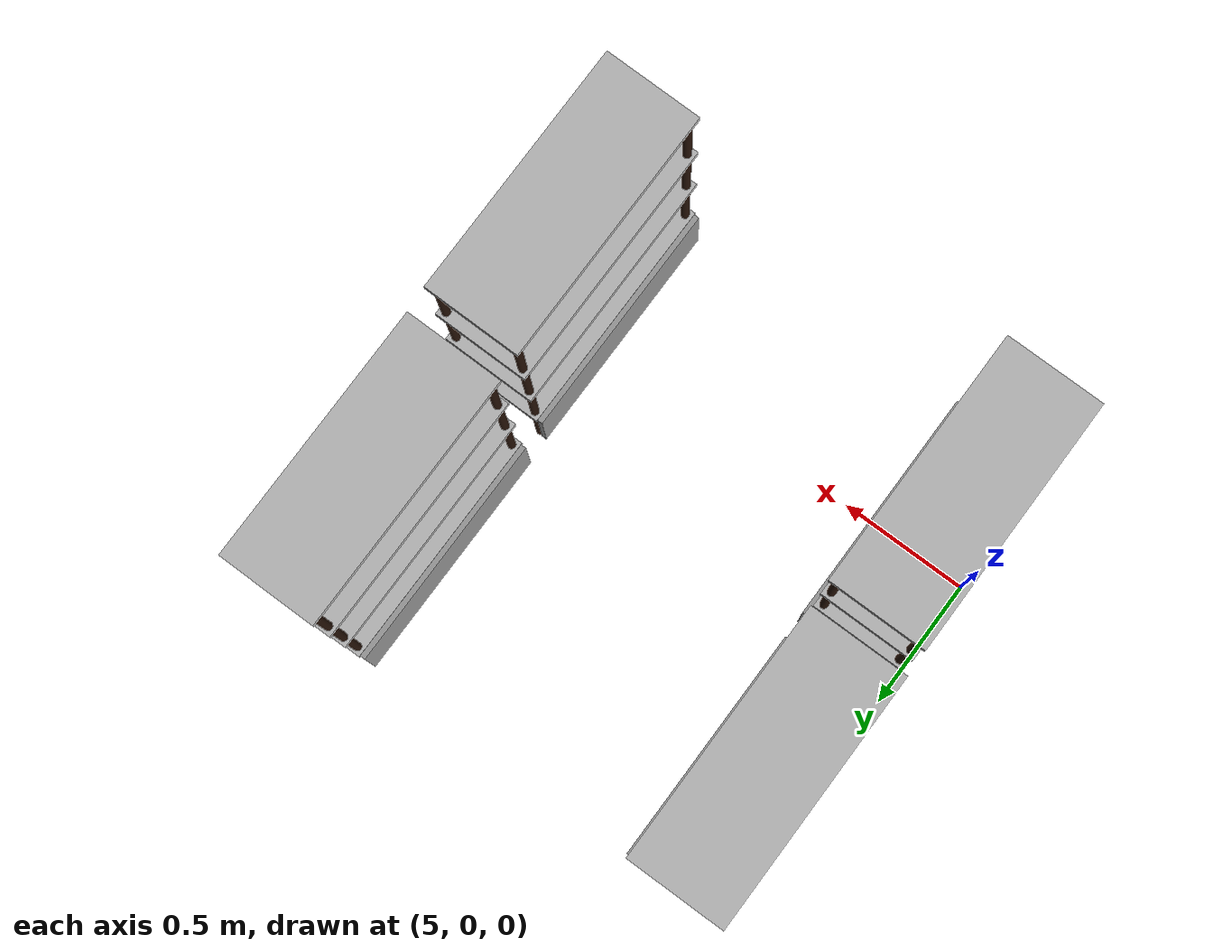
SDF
<sdf version="1.7">
 <world name="default">
  <model name="rack_1">
   <link name="link">
    <inertial>
     <mass>0.1</mass>
     <inertia><ixx>0.01857</ixx><ixy>0</ixy><ixz>0</ixz><iyy>0.015598</iyy><iyz>0</iyz><izz>0.00305</izz></inertia>
    </inertial>
    <visual name="visual1">
     <cast_shadows>0</cast_shadows>
     <geometry><mesh><uri>model://rack/meshes/rack.dae</uri></mesh></geometry>
     <material>
      <shader type="pixel"><normal_map>__default__</normal_map></shader>
      <emissive>0 0 0 1</emissive>
     </material>
    </visual>
    <visual name="visual_2">
     <cast_shadows>0</cast_shadows>
     <geometry><box><size>0.02 0.9 0.31</size></box></geometry>
     <material>
      <lighting>1</lighting>
      <script><uri>file://media/materials/scripts/gazebo.material</uri><name>Gazebo/Grey</name></script>
      <shader type="pixel"><normal_map>__default__</normal_map></shader>
      <ambient>0.3 0.3 0.3 1</ambient>
      <diffuse>0.7 0.7 0.7 1</diffuse>
      <specular>0.01 0.01 0.01 1</specular>
      <emissive>0 0 0 1</emissive>
     </material>
     <pose>-0.185 0 0.22 0 -0 0</pose>
    </visual>
    <collision name="collision_7">
     <pose>0 0 0.36 0 1.57 1.57</pose>
     <geometry><box><size>0.05 0.35 0.91</size></box></geometry>
     <surface>
      <friction>
       <ode><mu>1</mu><mu2>1</mu2><fdir1>0 0 0</fdir1><slip1>0</slip1><slip2>0</slip2></ode>
       <torsional>
        <coefficient>1</coefficient>
        <patch_radius>0</patch_radius>
        <surface_radius>0</surface_radius>
        <use_patch_radius>1</use_patch_radius>
        <ode><slip>0</slip></ode>
       </torsional>
      </friction>
      <bounce><restitution_coefficient>0</restitution_coefficient><threshold>1e+06</threshold></bounce>
      <contact>
       <collide_without_contact>0</collide_without_contact>
       <collide_without_contact_bitmask>1</collide_without_contact_bitmask>
       <collide_bitmask>1</collide_bitmask>
       <ode>
        <soft_cfm>0</soft_cfm>
        <soft_erp>0.2</soft_erp>
        <kp>1e+15</kp>
        <kd>1e+13</kd>
        <max_vel>0.01</max_vel>
        <min_depth>0</min_depth>
       </ode>
       <bullet>
        <split_impulse>1</split_impulse>
        <split_impulse_penetration_threshold>-0.01</split_impulse_penetration_threshold>
        <soft_cfm>0</soft_cfm>
        <soft_erp>0.2</soft_erp>
        <kp>1e+13</kp>
        <kd>1</kd>
       </bullet>
      </contact>
     </surface>
    </collision>
    <collision name="collision_6">
     <pose>0 0 0.725 0 1.57 1.57</pose>
     <geometry><box><size>0.05 0.35 0.91</size></box></geometry>
     <surface>
      <friction>
       <ode><mu>1</mu><mu2>1</mu2><fdir1>0 0 0</fdir1><slip1>0</slip1><slip2>0</slip2></ode>
       <torsional>
        <coefficient>1</coefficient>
        <patch_radius>0</patch_radius>
        <surface_radius>0</surface_radius>
        <use_patch_radius>1</use_patch_radius>
        <ode><slip>0</slip></ode>
       </torsional>
      </friction>
      <bounce><restitution_coefficient>0</restitution_coefficient><threshold>1e+06</threshold></bounce>
      <contact>
       <collide_without_contact>0</collide_without_contact>
       <collide_without_contact_bitmask>1</collide_without_contact_bitmask>
       <collide_bitmask>1</collide_bitmask>
       <ode>
        <soft_cfm>0</soft_cfm>
        <soft_erp>0.2</soft_erp>
        <kp>1e+15</kp>
        <kd>1e+13</kd>
        <max_vel>0.01</max_vel>
        <min_depth>0</min_depth>
       </ode>
       <bullet>
        <split_impulse>1</split_impulse>
        <split_impulse_penetration_threshold>-0.01</split_impulse_penetration_threshold>
        <soft_cfm>0</soft_cfm>
        <soft_erp>0.2</soft_erp>
        <kp>1e+13</kp>
        <kd>1</kd>
       </bullet>
      </contact>
     </surface>
    </collision>
    <collision name="collision_5">
     <pose>0 0 1.09 0 1.57 1.57</pose>
     <geometry><box><size>0.05 0.35 0.91</size></box></geometry>
     <surface>
      <friction>
       <ode><mu>1</mu><mu2>1</mu2><fdir1>0 0 0</fdir1><slip1>0</slip1><slip2>0</slip2></ode>
       <torsional>
        <coefficient>1</coefficient>
        <patch_radius>0</patch_radius>
        <surface_radius>0</surface_radius>
        <use_patch_radius>1</use_patch_radius>
        <ode><slip>0</slip></ode>
       </torsional>
      </friction>
      <bounce><restitution_coefficient>0</restitution_coefficient><threshold>1e+06</threshold></bounce>
      <contact>
       <collide_without_contact>0</collide_without_contact>
       <collide_without_contact_bitmask>1</collide_without_contact_bitmask>
       <collide_bitmask>1</collide_bitmask>
       <ode>
        <soft_cfm>0</soft_cfm>
        <soft_erp>0.2</soft_erp>
        <kp>1e+15</kp>
        <kd>1e+13</kd>
        <max_vel>0.01</max_vel>
        <min_depth>0</min_depth>
       </ode>
       <bullet>
        <split_impulse>1</split_impulse>
        <split_impulse_penetration_threshold>-0.01</split_impulse_penetration_threshold>
        <soft_cfm>0</soft_cfm>
        <soft_erp>0.2</soft_erp>
        <kp>1e+13</kp>
        <kd>1</kd>
       </bullet>
      </contact>
     </surface>
    </collision>
    <collision name="collision_3">
     <pose>0 0 1.455 0 1.57 1.57</pose>
     <geometry><box><size>0.05 0.35 0.91</size></box></geometry>
     <surface>
      <friction>
       <ode><mu>1</mu><mu2>1</mu2><fdir1>0 0 0</fdir1><slip1>0</slip1><slip2>0</slip2></ode>
       <torsional>
        <coefficient>1</coefficient>
        <patch_radius>0</patch_radius>
        <surface_radius>0</surface_radius>
        <use_patch_radius>1</use_patch_radius>
        <ode><slip>0</slip></ode>
       </torsional>
      </friction>
      <bounce><restitution_coefficient>0</restitution_coefficient><threshold>1e+06</threshold></bounce>
      <contact>
       <collide_without_contact>0</collide_without_contact>
       <collide_without_contact_bitmask>1</collide_without_contact_bitmask>
       <collide_bitmask>1</collide_bitmask>
       <ode>
        <soft_cfm>0</soft_cfm>
        <soft_erp>0.2</soft_erp>
        <kp>1e+15</kp>
        <kd>1e+13</kd>
        <max_vel>0.01</max_vel>
        <min_depth>0</min_depth>
       </ode>
       <bullet>
        <split_impulse>1</split_impulse>
        <split_impulse_penetration_threshold>-0.01</split_impulse_penetration_threshold>
        <soft_cfm>0</soft_cfm>
        <soft_erp>0.2</soft_erp>
        <kp>1e+13</kp>
        <kd>1</kd>
       </bullet>
      </contact>
     </surface>
    </collision>
    <collision name="collision_1">
     <pose>0 0.43 0.73 0 -0 1.57</pose>
     <geometry><box><size>0.05 0.36 1.46</size></box></geometry>
     <surface>
      <friction>
       <ode><mu>1</mu><mu2>1</mu2><fdir1>0 0 0</fdir1><slip1>0</slip1><slip2>0</slip2></ode>
       <torsional>
        <coefficient>1</coefficient>
        <patch_radius>0</patch_radius>
        <surface_radius>0</surface_radius>
        <use_patch_radius>1</use_patch_radius>
        <ode><slip>0</slip></ode>
       </torsional>
      </friction>
      <bounce><restitution_coefficient>0</restitution_coefficient><threshold>1e+06</threshold></bounce>
      <contact>
       <collide_without_contact>0</collide_without_contact>
       <collide_without_contact_bitmask>1</collide_without_contact_bitmask>
       <collide_bitmask>1</collide_bitmask>
       <ode>
        <soft_cfm>0</soft_cfm>
        <soft_erp>0.2</soft_erp>
        <kp>1e+15</kp>
        <kd>1e+13</kd>
        <max_vel>0.01</max_vel>
        <min_depth>0</min_depth>
       </ode>
       <bullet>
        <split_impulse>1</split_impulse>
        <split_impulse_penetration_threshold>-0.01</split_impulse_penetration_threshold>
        <soft_cfm>0</soft_cfm>
        <soft_erp>0.2</soft_erp>
        <kp>1e+13</kp>
        <kd>1</kd>
       </bullet>
      </contact>
     </surface>
    </collision>
    <collision name="collision_2">
     <pose>0 -0.43 0.73 0 -0 1.57</pose>
     <geometry><box><size>0.05 0.36 1.46</size></box></geometry>
     <surface>
      <friction>
       <ode><mu>1</mu><mu2>1</mu2><fdir1>0 0 0</fdir1><slip1>0</slip1><slip2>0</slip2></ode>
       <torsional>
        <coefficient>1</coefficient>
        <patch_radius>0</patch_radius>
        <surface_radius>0</surface_radius>
        <use_patch_radius>1</use_patch_radius>
        <ode><slip>0</slip></ode>
       </torsional>
      </friction>
      <bounce><restitution_coefficient>0</restitution_coefficient><threshold>1e+06</threshold></bounce>
      <contact>
       <collide_without_contact>0</collide_without_contact>
       <collide_without_contact_bitmask>1</collide_without_contact_bitmask>
       <collide_bitmask>1</collide_bitmask>
       <ode>
        <soft_cfm>0</soft_cfm>
        <soft_erp>0.2</soft_erp>
        <kp>1e+15</kp>
        <kd>1e+13</kd>
        <max_vel>0.01</max_vel>
        <min_depth>0</min_depth>
       </ode>
       <bullet>
        <split_impulse>1</split_impulse>
        <split_impulse_penetration_threshold>-0.01</split_impulse_penetration_threshold>
        <soft_cfm>0</soft_cfm>
        <soft_erp>0.2</soft_erp>
        <kp>1e+13</kp>
        <kd>1</kd>
       </bullet>
      </contact>
     </surface>
    </collision>
    <collision name="collision">
     <pose>-0.185 0 0.22 0 -0 0</pose>
     <geometry><box><size>0.02 0.9 0.31</size></box></geometry>
     <surface>
      <friction>
       <ode><mu>1</mu><mu2>1</mu2><fdir1>0 0 0</fdir1><slip1>0</slip1><slip2>0</slip2></ode>
       <torsional>
        <coefficient>1</coefficient>
        <patch_radius>0</patch_radius>
        <surface_radius>0</surface_radius>
        <use_patch_radius>1</use_patch_radius>
        <ode><slip>0</slip></ode>
       </torsional>
      </friction>
      <bounce><restitution_coefficient>0</restitution_coefficient><threshold>1e+06</threshold></bounce>
      <contact>
       <collide_without_contact>0</collide_without_contact>
       <collide_without_contact_bitmask>1</collide_without_contact_bitmask>
       <collide_bitmask>1</collide_bitmask>
       <ode>
        <soft_cfm>0</soft_cfm>
        <soft_erp>0.2</soft_erp>
        <kp>1e+15</kp>
        <kd>1e+13</kd>
        <max_vel>0.01</max_vel>
        <min_depth>0</min_depth>
       </ode>
       <bullet>
        <split_impulse>1</split_impulse>
        <split_impulse_penetration_threshold>-0.01</split_impulse_penetration_threshold>
        <soft_cfm>0</soft_cfm>
        <soft_erp>0.2</soft_erp>
        <kp>1e+13</kp>
        <kd>1</kd>
       </bullet>
      </contact>
     </surface>
    </collision>
   </link>
   <static>0</static>
   <pose>6.68339 0.000257 0.032197 -4.9e-05 0.000366 -0.006943</pose>
  </model>
  <model name="rack_2">
   <link name="link">
    <inertial>
     <mass>0.1</mass>
     <inertia><ixx>0.01857</ixx><ixy>0</ixy><ixz>0</ixz><iyy>0.015598</iyy><iyz>0</iyz><izz>0.00305</izz></inertia>
    </inertial>
    <visual name="visual1">
     <cast_shadows>0</cast_shadows>
     <geometry><mesh><uri>model://rack/meshes/rack.dae</uri></mesh></geometry>
     <material>
      <shader type="pixel"><normal_map>__default__</normal_map></shader>
      <emissive>0 0 0 1</emissive>
     </material>
    </visual>
    <visual name="visual_2">
     <cast_shadows>0</cast_shadows>
     <geometry><box><size>0.02 0.9 0.31</size></box></geometry>
     <material>
      <lighting>1</lighting>
      <script><uri>file://media/materials/scripts/gazebo.material</uri><name>Gazebo/Grey</name></script>
      <shader type="pixel"><normal_map>__default__</normal_map></shader>
      <ambient>0.3 0.3 0.3 1</ambient>
      <diffuse>0.7 0.7 0.7 1</diffuse>
      <specular>0.01 0.01 0.01 1</specular>
      <emissive>0 0 0 1</emissive>
     </material>
     <pose>-0.185 0 0.22 0 -0 0</pose>
    </visual>
    <collision name="collision_7">
     <pose>0 0 0.36 0 1.57 1.57</pose>
     <geometry><box><size>0.05 0.35 0.91</size></box></geometry>
     <surface>
      <friction>
       <ode><mu>1</mu><mu2>1</mu2><fdir1>0 0 0</fdir1><slip1>0</slip1><slip2>0</slip2></ode>
       <torsional>
        <coefficient>1</coefficient>
        <patch_radius>0</patch_radius>
        <surface_radius>0</surface_radius>
        <use_patch_radius>1</use_patch_radius>
        <ode><slip>0</slip></ode>
       </torsional>
      </friction>
      <bounce><restitution_coefficient>0</restitution_coefficient><threshold>1e+06</threshold></bounce>
      <contact>
       <collide_without_contact>0</collide_without_contact>
       <collide_without_contact_bitmask>1</collide_without_contact_bitmask>
       <collide_bitmask>1</collide_bitmask>
       <ode>
        <soft_cfm>0</soft_cfm>
        <soft_erp>0.2</soft_erp>
        <kp>1e+15</kp>
        <kd>1e+13</kd>
        <max_vel>0.01</max_vel>
        <min_depth>0</min_depth>
       </ode>
       <bullet>
        <split_impulse>1</split_impulse>
        <split_impulse_penetration_threshold>-0.01</split_impulse_penetration_threshold>
        <soft_cfm>0</soft_cfm>
        <soft_erp>0.2</soft_erp>
        <kp>1e+13</kp>
        <kd>1</kd>
       </bullet>
      </contact>
     </surface>
    </collision>
    <collision name="collision_6">
     <pose>0 0 0.725 0 1.57 1.57</pose>
     <geometry><box><size>0.05 0.35 0.91</size></box></geometry>
     <surface>
      <friction>
       <ode><mu>1</mu><mu2>1</mu2><fdir1>0 0 0</fdir1><slip1>0</slip1><slip2>0</slip2></ode>
       <torsional>
        <coefficient>1</coefficient>
        <patch_radius>0</patch_radius>
        <surface_radius>0</surface_radius>
        <use_patch_radius>1</use_patch_radius>
        <ode><slip>0</slip></ode>
       </torsional>
      </friction>
      <bounce><restitution_coefficient>0</restitution_coefficient><threshold>1e+06</threshold></bounce>
      <contact>
       <collide_without_contact>0</collide_without_contact>
       <collide_without_contact_bitmask>1</collide_without_contact_bitmask>
       <collide_bitmask>1</collide_bitmask>
       <ode>
        <soft_cfm>0</soft_cfm>
        <soft_erp>0.2</soft_erp>
        <kp>1e+15</kp>
        <kd>1e+13</kd>
        <max_vel>0.01</max_vel>
        <min_depth>0</min_depth>
       </ode>
       <bullet>
        <split_impulse>1</split_impulse>
        <split_impulse_penetration_threshold>-0.01</split_impulse_penetration_threshold>
        <soft_cfm>0</soft_cfm>
        <soft_erp>0.2</soft_erp>
        <kp>1e+13</kp>
        <kd>1</kd>
       </bullet>
      </contact>
     </surface>
    </collision>
    <collision name="collision_5">
     <pose>0 0 1.09 0 1.57 1.57</pose>
     <geometry><box><size>0.05 0.35 0.91</size></box></geometry>
     <surface>
      <friction>
       <ode><mu>1</mu><mu2>1</mu2><fdir1>0 0 0</fdir1><slip1>0</slip1><slip2>0</slip2></ode>
       <torsional>
        <coefficient>1</coefficient>
        <patch_radius>0</patch_radius>
        <surface_radius>0</surface_radius>
        <use_patch_radius>1</use_patch_radius>
        <ode><slip>0</slip></ode>
       </torsional>
      </friction>
      <bounce><restitution_coefficient>0</restitution_coefficient><threshold>1e+06</threshold></bounce>
      <contact>
       <collide_without_contact>0</collide_without_contact>
       <collide_without_contact_bitmask>1</collide_without_contact_bitmask>
       <collide_bitmask>1</collide_bitmask>
       <ode>
        <soft_cfm>0</soft_cfm>
        <soft_erp>0.2</soft_erp>
        <kp>1e+15</kp>
        <kd>1e+13</kd>
        <max_vel>0.01</max_vel>
        <min_depth>0</min_depth>
       </ode>
       <bullet>
        <split_impulse>1</split_impulse>
        <split_impulse_penetration_threshold>-0.01</split_impulse_penetration_threshold>
        <soft_cfm>0</soft_cfm>
        <soft_erp>0.2</soft_erp>
        <kp>1e+13</kp>
        <kd>1</kd>
       </bullet>
      </contact>
     </surface>
    </collision>
    <collision name="collision_3">
     <pose>0 0 1.455 0 1.57 1.57</pose>
     <geometry><box><size>0.05 0.35 0.91</size></box></geometry>
     <surface>
      <friction>
       <ode><mu>1</mu><mu2>1</mu2><fdir1>0 0 0</fdir1><slip1>0</slip1><slip2>0</slip2></ode>
       <torsional>
        <coefficient>1</coefficient>
        <patch_radius>0</patch_radius>
        <surface_radius>0</surface_radius>
        <use_patch_radius>1</use_patch_radius>
        <ode><slip>0</slip></ode>
       </torsional>
      </friction>
      <bounce><restitution_coefficient>0</restitution_coefficient><threshold>1e+06</threshold></bounce>
      <contact>
       <collide_without_contact>0</collide_without_contact>
       <collide_without_contact_bitmask>1</collide_without_contact_bitmask>
       <collide_bitmask>1</collide_bitmask>
       <ode>
        <soft_cfm>0</soft_cfm>
        <soft_erp>0.2</soft_erp>
        <kp>1e+15</kp>
        <kd>1e+13</kd>
        <max_vel>0.01</max_vel>
        <min_depth>0</min_depth>
       </ode>
       <bullet>
        <split_impulse>1</split_impulse>
        <split_impulse_penetration_threshold>-0.01</split_impulse_penetration_threshold>
        <soft_cfm>0</soft_cfm>
        <soft_erp>0.2</soft_erp>
        <kp>1e+13</kp>
        <kd>1</kd>
       </bullet>
      </contact>
     </surface>
    </collision>
    <collision name="collision_1">
     <pose>0 0.43 0.73 0 -0 1.57</pose>
     <geometry><box><size>0.05 0.36 1.46</size></box></geometry>
     <surface>
      <friction>
       <ode><mu>1</mu><mu2>1</mu2><fdir1>0 0 0</fdir1><slip1>0</slip1><slip2>0</slip2></ode>
       <torsional>
        <coefficient>1</coefficient>
        <patch_radius>0</patch_radius>
        <surface_radius>0</surface_radius>
        <use_patch_radius>1</use_patch_radius>
        <ode><slip>0</slip></ode>
       </torsional>
      </friction>
      <bounce><restitution_coefficient>0</restitution_coefficient><threshold>1e+06</threshold></bounce>
      <contact>
       <collide_without_contact>0</collide_without_contact>
       <collide_without_contact_bitmask>1</collide_without_contact_bitmask>
       <collide_bitmask>1</collide_bitmask>
       <ode>
        <soft_cfm>0</soft_cfm>
        <soft_erp>0.2</soft_erp>
        <kp>1e+15</kp>
        <kd>1e+13</kd>
        <max_vel>0.01</max_vel>
        <min_depth>0</min_depth>
       </ode>
       <bullet>
        <split_impulse>1</split_impulse>
        <split_impulse_penetration_threshold>-0.01</split_impulse_penetration_threshold>
        <soft_cfm>0</soft_cfm>
        <soft_erp>0.2</soft_erp>
        <kp>1e+13</kp>
        <kd>1</kd>
       </bullet>
      </contact>
     </surface>
    </collision>
    <collision name="collision_2">
     <pose>0 -0.43 0.73 0 -0 1.57</pose>
     <geometry><box><size>0.05 0.36 1.46</size></box></geometry>
     <surface>
      <friction>
       <ode><mu>1</mu><mu2>1</mu2><fdir1>0 0 0</fdir1><slip1>0</slip1><slip2>0</slip2></ode>
       <torsional>
        <coefficient>1</coefficient>
        <patch_radius>0</patch_radius>
        <surface_radius>0</surface_radius>
        <use_patch_radius>1</use_patch_radius>
        <ode><slip>0</slip></ode>
       </torsional>
      </friction>
      <bounce><restitution_coefficient>0</restitution_coefficient><threshold>1e+06</threshold></bounce>
      <contact>
       <collide_without_contact>0</collide_without_contact>
       <collide_without_contact_bitmask>1</collide_without_contact_bitmask>
       <collide_bitmask>1</collide_bitmask>
       <ode>
        <soft_cfm>0</soft_cfm>
        <soft_erp>0.2</soft_erp>
        <kp>1e+15</kp>
        <kd>1e+13</kd>
        <max_vel>0.01</max_vel>
        <min_depth>0</min_depth>
       </ode>
       <bullet>
        <split_impulse>1</split_impulse>
        <split_impulse_penetration_threshold>-0.01</split_impulse_penetration_threshold>
        <soft_cfm>0</soft_cfm>
        <soft_erp>0.2</soft_erp>
        <kp>1e+13</kp>
        <kd>1</kd>
       </bullet>
      </contact>
     </surface>
    </collision>
    <collision name="collision">
     <pose>-0.185 0 0.22 0 -0 0</pose>
     <geometry><box><size>0.02 0.9 0.31</size></box></geometry>
     <surface>
      <friction>
       <ode><mu>1</mu><mu2>1</mu2><fdir1>0 0 0</fdir1><slip1>0</slip1><slip2>0</slip2></ode>
       <torsional>
        <coefficient>1</coefficient>
        <patch_radius>0</patch_radius>
        <surface_radius>0</surface_radius>
        <use_patch_radius>1</use_patch_radius>
        <ode><slip>0</slip></ode>
       </torsional>
      </friction>
      <bounce><restitution_coefficient>0</restitution_coefficient><threshold>1e+06</threshold></bounce>
      <contact>
       <collide_without_contact>0</collide_without_contact>
       <collide_without_contact_bitmask>1</collide_without_contact_bitmask>
       <collide_bitmask>1</collide_bitmask>
       <ode>
        <soft_cfm>0</soft_cfm>
        <soft_erp>0.2</soft_erp>
        <kp>1e+15</kp>
        <kd>1e+13</kd>
        <max_vel>0.01</max_vel>
        <min_depth>0</min_depth>
       </ode>
       <bullet>
        <split_impulse>1</split_impulse>
        <split_impulse_penetration_threshold>-0.01</split_impulse_penetration_threshold>
        <soft_cfm>0</soft_cfm>
        <soft_erp>0.2</soft_erp>
        <kp>1e+13</kp>
        <kd>1</kd>
       </bullet>
      </contact>
     </surface>
    </collision>
   </link>
   <static>0</static>
   <pose>6.68376 1.00024 0.032113 4.6e-05 0.000309 -0.006653</pose>
  </model>
  <model name="rack_3">
   <link name="link">
    <inertial>
     <mass>0.1</mass>
     <inertia><ixx>0.01857</ixx><ixy>0</ixy><ixz>0</ixz><iyy>0.015598</iyy><iyz>0</iyz><izz>0.00305</izz></inertia>
    </inertial>
    <visual name="visual1">
     <cast_shadows>0</cast_shadows>
     <geometry><mesh><uri>model://rack/meshes/rack.dae</uri></mesh></geometry>
     <material>
      <shader type="pixel"><normal_map>__default__</normal_map></shader>
      <emissive>0 0 0 1</emissive>
     </material>
    </visual>
    <visual name="visual_2">
     <cast_shadows>0</cast_shadows>
     <geometry><box><size>0.02 0.9 0.31</size></box></geometry>
     <material>
      <lighting>1</lighting>
      <script><uri>file://media/materials/scripts/gazebo.material</uri><name>Gazebo/Grey</name></script>
      <shader type="pixel"><normal_map>__default__</normal_map></shader>
      <ambient>0.3 0.3 0.3 1</ambient>
      <diffuse>0.7 0.7 0.7 1</diffuse>
      <specular>0.01 0.01 0.01 1</specular>
      <emissive>0 0 0 1</emissive>
     </material>
     <pose>-0.185 0 0.22 0 -0 0</pose>
    </visual>
    <collision name="collision_7">
     <pose>0 0 0.36 0 1.57 1.57</pose>
     <geometry><box><size>0.05 0.35 0.91</size></box></geometry>
     <surface>
      <friction>
       <ode><mu>1</mu><mu2>1</mu2><fdir1>0 0 0</fdir1><slip1>0</slip1><slip2>0</slip2></ode>
       <torsional>
        <coefficient>1</coefficient>
        <patch_radius>0</patch_radius>
        <surface_radius>0</surface_radius>
        <use_patch_radius>1</use_patch_radius>
        <ode><slip>0</slip></ode>
       </torsional>
      </friction>
      <bounce><restitution_coefficient>0</restitution_coefficient><threshold>1e+06</threshold></bounce>
      <contact>
       <collide_without_contact>0</collide_without_contact>
       <collide_without_contact_bitmask>1</collide_without_contact_bitmask>
       <collide_bitmask>1</collide_bitmask>
       <ode>
        <soft_cfm>0</soft_cfm>
        <soft_erp>0.2</soft_erp>
        <kp>1e+15</kp>
        <kd>1e+13</kd>
        <max_vel>0.01</max_vel>
        <min_depth>0</min_depth>
       </ode>
       <bullet>
        <split_impulse>1</split_impulse>
        <split_impulse_penetration_threshold>-0.01</split_impulse_penetration_threshold>
        <soft_cfm>0</soft_cfm>
        <soft_erp>0.2</soft_erp>
        <kp>1e+13</kp>
        <kd>1</kd>
       </bullet>
      </contact>
     </surface>
    </collision>
    <collision name="collision_6">
     <pose>0 0 0.725 0 1.57 1.57</pose>
     <geometry><box><size>0.05 0.35 0.91</size></box></geometry>
     <surface>
      <friction>
       <ode><mu>1</mu><mu2>1</mu2><fdir1>0 0 0</fdir1><slip1>0</slip1><slip2>0</slip2></ode>
       <torsional>
        <coefficient>1</coefficient>
        <patch_radius>0</patch_radius>
        <surface_radius>0</surface_radius>
        <use_patch_radius>1</use_patch_radius>
        <ode><slip>0</slip></ode>
       </torsional>
      </friction>
      <bounce><restitution_coefficient>0</restitution_coefficient><threshold>1e+06</threshold></bounce>
      <contact>
       <collide_without_contact>0</collide_without_contact>
       <collide_without_contact_bitmask>1</collide_without_contact_bitmask>
       <collide_bitmask>1</collide_bitmask>
       <ode>
        <soft_cfm>0</soft_cfm>
        <soft_erp>0.2</soft_erp>
        <kp>1e+15</kp>
        <kd>1e+13</kd>
        <max_vel>0.01</max_vel>
        <min_depth>0</min_depth>
       </ode>
       <bullet>
        <split_impulse>1</split_impulse>
        <split_impulse_penetration_threshold>-0.01</split_impulse_penetration_threshold>
        <soft_cfm>0</soft_cfm>
        <soft_erp>0.2</soft_erp>
        <kp>1e+13</kp>
        <kd>1</kd>
       </bullet>
      </contact>
     </surface>
    </collision>
    <collision name="collision_5">
     <pose>0 0 1.09 0 1.57 1.57</pose>
     <geometry><box><size>0.05 0.35 0.91</size></box></geometry>
     <surface>
      <friction>
       <ode><mu>1</mu><mu2>1</mu2><fdir1>0 0 0</fdir1><slip1>0</slip1><slip2>0</slip2></ode>
       <torsional>
        <coefficient>1</coefficient>
        <patch_radius>0</patch_radius>
        <surface_radius>0</surface_radius>
        <use_patch_radius>1</use_patch_radius>
        <ode><slip>0</slip></ode>
       </torsional>
      </friction>
      <bounce><restitution_coefficient>0</restitution_coefficient><threshold>1e+06</threshold></bounce>
      <contact>
       <collide_without_contact>0</collide_without_contact>
       <collide_without_contact_bitmask>1</collide_without_contact_bitmask>
       <collide_bitmask>1</collide_bitmask>
       <ode>
        <soft_cfm>0</soft_cfm>
        <soft_erp>0.2</soft_erp>
        <kp>1e+15</kp>
        <kd>1e+13</kd>
        <max_vel>0.01</max_vel>
        <min_depth>0</min_depth>
       </ode>
       <bullet>
        <split_impulse>1</split_impulse>
        <split_impulse_penetration_threshold>-0.01</split_impulse_penetration_threshold>
        <soft_cfm>0</soft_cfm>
        <soft_erp>0.2</soft_erp>
        <kp>1e+13</kp>
        <kd>1</kd>
       </bullet>
      </contact>
     </surface>
    </collision>
    <collision name="collision_3">
     <pose>0 0 1.455 0 1.57 1.57</pose>
     <geometry><box><size>0.05 0.35 0.91</size></box></geometry>
     <surface>
      <friction>
       <ode><mu>1</mu><mu2>1</mu2><fdir1>0 0 0</fdir1><slip1>0</slip1><slip2>0</slip2></ode>
       <torsional>
        <coefficient>1</coefficient>
        <patch_radius>0</patch_radius>
        <surface_radius>0</surface_radius>
        <use_patch_radius>1</use_patch_radius>
        <ode><slip>0</slip></ode>
       </torsional>
      </friction>
      <bounce><restitution_coefficient>0</restitution_coefficient><threshold>1e+06</threshold></bounce>
      <contact>
       <collide_without_contact>0</collide_without_contact>
       <collide_without_contact_bitmask>1</collide_without_contact_bitmask>
       <collide_bitmask>1</collide_bitmask>
       <ode>
        <soft_cfm>0</soft_cfm>
        <soft_erp>0.2</soft_erp>
        <kp>1e+15</kp>
        <kd>1e+13</kd>
        <max_vel>0.01</max_vel>
        <min_depth>0</min_depth>
       </ode>
       <bullet>
        <split_impulse>1</split_impulse>
        <split_impulse_penetration_threshold>-0.01</split_impulse_penetration_threshold>
        <soft_cfm>0</soft_cfm>
        <soft_erp>0.2</soft_erp>
        <kp>1e+13</kp>
        <kd>1</kd>
       </bullet>
      </contact>
     </surface>
    </collision>
    <collision name="collision_1">
     <pose>0 0.43 0.73 0 -0 1.57</pose>
     <geometry><box><size>0.05 0.36 1.46</size></box></geometry>
     <surface>
      <friction>
       <ode><mu>1</mu><mu2>1</mu2><fdir1>0 0 0</fdir1><slip1>0</slip1><slip2>0</slip2></ode>
       <torsional>
        <coefficient>1</coefficient>
        <patch_radius>0</patch_radius>
        <surface_radius>0</surface_radius>
        <use_patch_radius>1</use_patch_radius>
        <ode><slip>0</slip></ode>
       </torsional>
      </friction>
      <bounce><restitution_coefficient>0</restitution_coefficient><threshold>1e+06</threshold></bounce>
      <contact>
       <collide_without_contact>0</collide_without_contact>
       <collide_without_contact_bitmask>1</collide_without_contact_bitmask>
       <collide_bitmask>1</collide_bitmask>
       <ode>
        <soft_cfm>0</soft_cfm>
        <soft_erp>0.2</soft_erp>
        <kp>1e+15</kp>
        <kd>1e+13</kd>
        <max_vel>0.01</max_vel>
        <min_depth>0</min_depth>
       </ode>
       <bullet>
        <split_impulse>1</split_impulse>
        <split_impulse_penetration_threshold>-0.01</split_impulse_penetration_threshold>
        <soft_cfm>0</soft_cfm>
        <soft_erp>0.2</soft_erp>
        <kp>1e+13</kp>
        <kd>1</kd>
       </bullet>
      </contact>
     </surface>
    </collision>
    <collision name="collision_2">
     <pose>0 -0.43 0.73 0 -0 1.57</pose>
     <geometry><box><size>0.05 0.36 1.46</size></box></geometry>
     <surface>
      <friction>
       <ode><mu>1</mu><mu2>1</mu2><fdir1>0 0 0</fdir1><slip1>0</slip1><slip2>0</slip2></ode>
       <torsional>
        <coefficient>1</coefficient>
        <patch_radius>0</patch_radius>
        <surface_radius>0</surface_radius>
        <use_patch_radius>1</use_patch_radius>
        <ode><slip>0</slip></ode>
       </torsional>
      </friction>
      <bounce><restitution_coefficient>0</restitution_coefficient><threshold>1e+06</threshold></bounce>
      <contact>
       <collide_without_contact>0</collide_without_contact>
       <collide_without_contact_bitmask>1</collide_without_contact_bitmask>
       <collide_bitmask>1</collide_bitmask>
       <ode>
        <soft_cfm>0</soft_cfm>
        <soft_erp>0.2</soft_erp>
        <kp>1e+15</kp>
        <kd>1e+13</kd>
        <max_vel>0.01</max_vel>
        <min_depth>0</min_depth>
       </ode>
       <bullet>
        <split_impulse>1</split_impulse>
        <split_impulse_penetration_threshold>-0.01</split_impulse_penetration_threshold>
        <soft_cfm>0</soft_cfm>
        <soft_erp>0.2</soft_erp>
        <kp>1e+13</kp>
        <kd>1</kd>
       </bullet>
      </contact>
     </surface>
    </collision>
    <collision name="collision">
     <pose>-0.185 0 0.22 0 -0 0</pose>
     <geometry><box><size>0.02 0.9 0.31</size></box></geometry>
     <surface>
      <friction>
       <ode><mu>1</mu><mu2>1</mu2><fdir1>0 0 0</fdir1><slip1>0</slip1><slip2>0</slip2></ode>
       <torsional>
        <coefficient>1</coefficient>
        <patch_radius>0</patch_radius>
        <surface_radius>0</surface_radius>
        <use_patch_radius>1</use_patch_radius>
        <ode><slip>0</slip></ode>
       </torsional>
      </friction>
      <bounce><restitution_coefficient>0</restitution_coefficient><threshold>1e+06</threshold></bounce>
      <contact>
       <collide_without_contact>0</collide_without_contact>
       <collide_without_contact_bitmask>1</collide_without_contact_bitmask>
       <collide_bitmask>1</collide_bitmask>
       <ode>
        <soft_cfm>0</soft_cfm>
        <soft_erp>0.2</soft_erp>
        <kp>1e+15</kp>
        <kd>1e+13</kd>
        <max_vel>0.01</max_vel>
        <min_depth>0</min_depth>
       </ode>
       <bullet>
        <split_impulse>1</split_impulse>
        <split_impulse_penetration_threshold>-0.01</split_impulse_penetration_threshold>
        <soft_cfm>0</soft_cfm>
        <soft_erp>0.2</soft_erp>
        <kp>1e+13</kp>
        <kd>1</kd>
       </bullet>
      </contact>
     </surface>
    </collision>
   </link>
   <static>0</static>
   <pose>5.2 1 0.032841 0 -0 3.14</pose>
  </model>
  <model name="rack_4">
   <link name="link">
    <inertial>
     <mass>0.1</mass>
     <inertia><ixx>0.01857</ixx><ixy>0</ixy><ixz>0</ixz><iyy>0.015598</iyy><iyz>0</iyz><izz>0.00305</izz></inertia>
    </inertial>
    <visual name="visual1">
     <cast_shadows>0</cast_shadows>
     <geometry><mesh><uri>model://rack/meshes/rack.dae</uri></mesh></geometry>
     <material>
      <shader type="pixel"><normal_map>__default__</normal_map></shader>
      <emissive>0 0 0 1</emissive>
     </material>
    </visual>
    <visual name="visual_2">
     <cast_shadows>0</cast_shadows>
     <geometry><box><size>0.02 0.9 0.31</size></box></geometry>
     <material>
      <lighting>1</lighting>
      <script><uri>file://media/materials/scripts/gazebo.material</uri><name>Gazebo/Grey</name></script>
      <shader type="pixel"><normal_map>__default__</normal_map></shader>
      <ambient>0.3 0.3 0.3 1</ambient>
      <diffuse>0.7 0.7 0.7 1</diffuse>
      <specular>0.01 0.01 0.01 1</specular>
      <emissive>0 0 0 1</emissive>
     </material>
     <pose>-0.185 0 0.22 0 -0 0</pose>
    </visual>
    <collision name="collision_7">
     <pose>0 0 0.36 0 1.57 1.57</pose>
     <geometry><box><size>0.05 0.35 0.91</size></box></geometry>
     <surface>
      <friction>
       <ode><mu>1</mu><mu2>1</mu2><fdir1>0 0 0</fdir1><slip1>0</slip1><slip2>0</slip2></ode>
       <torsional>
        <coefficient>1</coefficient>
        <patch_radius>0</patch_radius>
        <surface_radius>0</surface_radius>
        <use_patch_radius>1</use_patch_radius>
        <ode><slip>0</slip></ode>
       </torsional>
      </friction>
      <bounce><restitution_coefficient>0</restitution_coefficient><threshold>1e+06</threshold></bounce>
      <contact>
       <collide_without_contact>0</collide_without_contact>
       <collide_without_contact_bitmask>1</collide_without_contact_bitmask>
       <collide_bitmask>1</collide_bitmask>
       <ode>
        <soft_cfm>0</soft_cfm>
        <soft_erp>0.2</soft_erp>
        <kp>1e+15</kp>
        <kd>1e+13</kd>
        <max_vel>0.01</max_vel>
        <min_depth>0</min_depth>
       </ode>
       <bullet>
        <split_impulse>1</split_impulse>
        <split_impulse_penetration_threshold>-0.01</split_impulse_penetration_threshold>
        <soft_cfm>0</soft_cfm>
        <soft_erp>0.2</soft_erp>
        <kp>1e+13</kp>
        <kd>1</kd>
       </bullet>
      </contact>
     </surface>
    </collision>
    <collision name="collision_6">
     <pose>0 0 0.725 0 1.57 1.57</pose>
     <geometry><box><size>0.05 0.35 0.91</size></box></geometry>
     <surface>
      <friction>
       <ode><mu>1</mu><mu2>1</mu2><fdir1>0 0 0</fdir1><slip1>0</slip1><slip2>0</slip2></ode>
       <torsional>
        <coefficient>1</coefficient>
        <patch_radius>0</patch_radius>
        <surface_radius>0</surface_radius>
        <use_patch_radius>1</use_patch_radius>
        <ode><slip>0</slip></ode>
       </torsional>
      </friction>
      <bounce><restitution_coefficient>0</restitution_coefficient><threshold>1e+06</threshold></bounce>
      <contact>
       <collide_without_contact>0</collide_without_contact>
       <collide_without_contact_bitmask>1</collide_without_contact_bitmask>
       <collide_bitmask>1</collide_bitmask>
       <ode>
        <soft_cfm>0</soft_cfm>
        <soft_erp>0.2</soft_erp>
        <kp>1e+15</kp>
        <kd>1e+13</kd>
        <max_vel>0.01</max_vel>
        <min_depth>0</min_depth>
       </ode>
       <bullet>
        <split_impulse>1</split_impulse>
        <split_impulse_penetration_threshold>-0.01</split_impulse_penetration_threshold>
        <soft_cfm>0</soft_cfm>
        <soft_erp>0.2</soft_erp>
        <kp>1e+13</kp>
        <kd>1</kd>
       </bullet>
      </contact>
     </surface>
    </collision>
    <collision name="collision_5">
     <pose>0 0 1.09 0 1.57 1.57</pose>
     <geometry><box><size>0.05 0.35 0.91</size></box></geometry>
     <surface>
      <friction>
       <ode><mu>1</mu><mu2>1</mu2><fdir1>0 0 0</fdir1><slip1>0</slip1><slip2>0</slip2></ode>
       <torsional>
        <coefficient>1</coefficient>
        <patch_radius>0</patch_radius>
        <surface_radius>0</surface_radius>
        <use_patch_radius>1</use_patch_radius>
        <ode><slip>0</slip></ode>
       </torsional>
      </friction>
      <bounce><restitution_coefficient>0</restitution_coefficient><threshold>1e+06</threshold></bounce>
      <contact>
       <collide_without_contact>0</collide_without_contact>
       <collide_without_contact_bitmask>1</collide_without_contact_bitmask>
       <collide_bitmask>1</collide_bitmask>
       <ode>
        <soft_cfm>0</soft_cfm>
        <soft_erp>0.2</soft_erp>
        <kp>1e+15</kp>
        <kd>1e+13</kd>
        <max_vel>0.01</max_vel>
        <min_depth>0</min_depth>
       </ode>
       <bullet>
        <split_impulse>1</split_impulse>
        <split_impulse_penetration_threshold>-0.01</split_impulse_penetration_threshold>
        <soft_cfm>0</soft_cfm>
        <soft_erp>0.2</soft_erp>
        <kp>1e+13</kp>
        <kd>1</kd>
       </bullet>
      </contact>
     </surface>
    </collision>
    <collision name="collision_3">
     <pose>0 0 1.455 0 1.57 1.57</pose>
     <geometry><box><size>0.05 0.35 0.91</size></box></geometry>
     <surface>
      <friction>
       <ode><mu>1</mu><mu2>1</mu2><fdir1>0 0 0</fdir1><slip1>0</slip1><slip2>0</slip2></ode>
       <torsional>
        <coefficient>1</coefficient>
        <patch_radius>0</patch_radius>
        <surface_radius>0</surface_radius>
        <use_patch_radius>1</use_patch_radius>
        <ode><slip>0</slip></ode>
       </torsional>
      </friction>
      <bounce><restitution_coefficient>0</restitution_coefficient><threshold>1e+06</threshold></bounce>
      <contact>
       <collide_without_contact>0</collide_without_contact>
       <collide_without_contact_bitmask>1</collide_without_contact_bitmask>
       <collide_bitmask>1</collide_bitmask>
       <ode>
        <soft_cfm>0</soft_cfm>
        <soft_erp>0.2</soft_erp>
        <kp>1e+15</kp>
        <kd>1e+13</kd>
        <max_vel>0.01</max_vel>
        <min_depth>0</min_depth>
       </ode>
       <bullet>
        <split_impulse>1</split_impulse>
        <split_impulse_penetration_threshold>-0.01</split_impulse_penetration_threshold>
        <soft_cfm>0</soft_cfm>
        <soft_erp>0.2</soft_erp>
        <kp>1e+13</kp>
        <kd>1</kd>
       </bullet>
      </contact>
     </surface>
    </collision>
    <collision name="collision_1">
     <pose>0 0.43 0.73 0 -0 1.57</pose>
     <geometry><box><size>0.05 0.36 1.46</size></box></geometry>
     <surface>
      <friction>
       <ode><mu>1</mu><mu2>1</mu2><fdir1>0 0 0</fdir1><slip1>0</slip1><slip2>0</slip2></ode>
       <torsional>
        <coefficient>1</coefficient>
        <patch_radius>0</patch_radius>
        <surface_radius>0</surface_radius>
        <use_patch_radius>1</use_patch_radius>
        <ode><slip>0</slip></ode>
       </torsional>
      </friction>
      <bounce><restitution_coefficient>0</restitution_coefficient><threshold>1e+06</threshold></bounce>
      <contact>
       <collide_without_contact>0</collide_without_contact>
       <collide_without_contact_bitmask>1</collide_without_contact_bitmask>
       <collide_bitmask>1</collide_bitmask>
       <ode>
        <soft_cfm>0</soft_cfm>
        <soft_erp>0.2</soft_erp>
        <kp>1e+15</kp>
        <kd>1e+13</kd>
        <max_vel>0.01</max_vel>
        <min_depth>0</min_depth>
       </ode>
       <bullet>
        <split_impulse>1</split_impulse>
        <split_impulse_penetration_threshold>-0.01</split_impulse_penetration_threshold>
        <soft_cfm>0</soft_cfm>
        <soft_erp>0.2</soft_erp>
        <kp>1e+13</kp>
        <kd>1</kd>
       </bullet>
      </contact>
     </surface>
    </collision>
    <collision name="collision_2">
     <pose>0 -0.43 0.73 0 -0 1.57</pose>
     <geometry><box><size>0.05 0.36 1.46</size></box></geometry>
     <surface>
      <friction>
       <ode><mu>1</mu><mu2>1</mu2><fdir1>0 0 0</fdir1><slip1>0</slip1><slip2>0</slip2></ode>
       <torsional>
        <coefficient>1</coefficient>
        <patch_radius>0</patch_radius>
        <surface_radius>0</surface_radius>
        <use_patch_radius>1</use_patch_radius>
        <ode><slip>0</slip></ode>
       </torsional>
      </friction>
      <bounce><restitution_coefficient>0</restitution_coefficient><threshold>1e+06</threshold></bounce>
      <contact>
       <collide_without_contact>0</collide_without_contact>
       <collide_without_contact_bitmask>1</collide_without_contact_bitmask>
       <collide_bitmask>1</collide_bitmask>
       <ode>
        <soft_cfm>0</soft_cfm>
        <soft_erp>0.2</soft_erp>
        <kp>1e+15</kp>
        <kd>1e+13</kd>
        <max_vel>0.01</max_vel>
        <min_depth>0</min_depth>
       </ode>
       <bullet>
        <split_impulse>1</split_impulse>
        <split_impulse_penetration_threshold>-0.01</split_impulse_penetration_threshold>
        <soft_cfm>0</soft_cfm>
        <soft_erp>0.2</soft_erp>
        <kp>1e+13</kp>
        <kd>1</kd>
       </bullet>
      </contact>
     </surface>
    </collision>
    <collision name="collision">
     <pose>-0.185 0 0.22 0 -0 0</pose>
     <geometry><box><size>0.02 0.9 0.31</size></box></geometry>
     <surface>
      <friction>
       <ode><mu>1</mu><mu2>1</mu2><fdir1>0 0 0</fdir1><slip1>0</slip1><slip2>0</slip2></ode>
       <torsional>
        <coefficient>1</coefficient>
        <patch_radius>0</patch_radius>
        <surface_radius>0</surface_radius>
        <use_patch_radius>1</use_patch_radius>
        <ode><slip>0</slip></ode>
       </torsional>
      </friction>
      <bounce><restitution_coefficient>0</restitution_coefficient><threshold>1e+06</threshold></bounce>
      <contact>
       <collide_without_contact>0</collide_without_contact>
       <collide_without_contact_bitmask>1</collide_without_contact_bitmask>
       <collide_bitmask>1</collide_bitmask>
       <ode>
        <soft_cfm>0</soft_cfm>
        <soft_erp>0.2</soft_erp>
        <kp>1e+15</kp>
        <kd>1e+13</kd>
        <max_vel>0.01</max_vel>
        <min_depth>0</min_depth>
       </ode>
       <bullet>
        <split_impulse>1</split_impulse>
        <split_impulse_penetration_threshold>-0.01</split_impulse_penetration_threshold>
        <soft_cfm>0</soft_cfm>
        <soft_erp>0.2</soft_erp>
        <kp>1e+13</kp>
        <kd>1</kd>
       </bullet>
      </contact>
     </surface>
    </collision>
   </link>
   <static>0</static>
   <pose>5.2 -0 0.033297 0 -0 3.14</pose>
  </model>
 </world>
</sdf>
